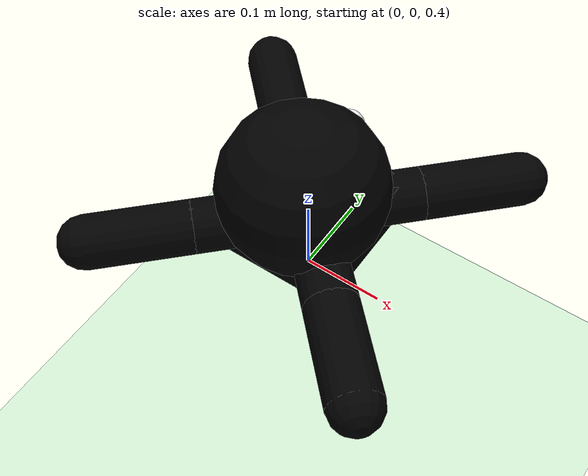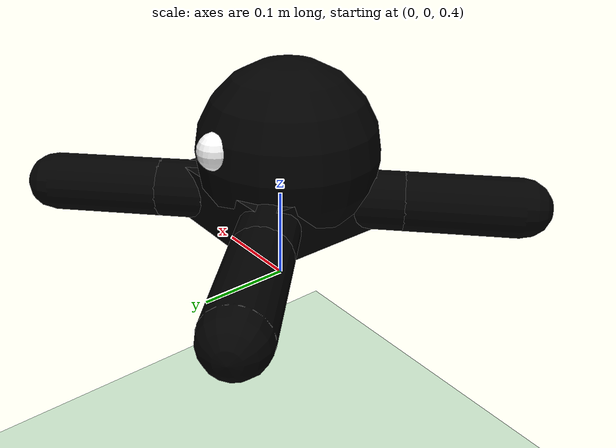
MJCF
<mujoco model="ant">
  <compiler angle="degree" coordinate="local" inertiafromgeom="true"/>
  <option integrator="RK4" timestep="0.01"/>
  <custom>
    <numeric data="0.0 0.0 0.55 1.0 0.0 0.0 0.0 0.0 1.0 0.0 -1.0 0.0 -1.0 0.0 1.0" name="init_qpos"/>
  </custom>
  <default>
    <joint armature="1" damping="1" limited="true"/>
    <geom conaffinity="0" condim="3" density="5.0" friction="1.5 0.1 0.1" margin="0.01" rgba="0.8 0.6 0.4 1"/>
  </default>
  <asset>
    <texture builtin="gradient" height="100" rgb1="1 1 1" rgb2="0 0 0" type="skybox" width="100"/>
    <texture builtin="flat" height="1278" mark="cross" markrgb="1 1 1" name="texgeom" random="0.01" rgb1="0.8 0.6 0.4" rgb2="0.8 0.6 0.4" type="cube" width="127"/>
    <texture name="texplane" type="2d" builtin="checker" rgb1="1 1 1" rgb2="1 1 1" width="100" height="100" />
    <material name="MatPlane" reflectance="0.5" shininess="1" specular="1" texrepeat="60 60" texture="texplane"/>
    <material name="geom" texture="texgeom" texuniform="true"/>
  </asset>
  <worldbody>
    <light cutoff="100" diffuse="1 1 1" dir="-0 0 -1.3" directional="true" exponent="1" pos="0 0 1.3" specular=".1 .1 .1"/>
    <geom conaffinity="1" condim="3" material="MatPlane" name="floor" pos="0 0 0" rgba="0.8 0.9 0.8 1" size="5 5 5" type="plane"/>
    <body name="torso" pos="0 0 0.5">
      <camera name="track" mode="trackcom" pos="0 -2 2" xyaxes="1 0 0 0 1 1"/>
      <camera euler="90 0 0" fovy="120" name="rgb" pos="0.0 0.08 0.07"/>
      <site name="camera_pos" rgba="1 1 1 1" pos="0.0 0.08 0.07" size="0.02"/>
      <geom name="torso_geom" pos="0 0 0" size="0.08 0.08 0.03" type="box" mass="1" rgba="0 0 0 1"/>
      <geom name="torso_geom2" pos="0.0 -0.01 0.05" size="0.1" type="sphere" mass="0.3" rgba="0 0 0 1"/>
      <joint armature="0" damping="0" limited="false" margin="0.01" name="root" pos="0 0 0" type="free"/>

      <body name="front_left_leg" pos="0 0 0">
        <geom fromto="0.0 0.0 0.0 0.057 0.057 0.0" name="aux_1_geom" size="0.032" type="capsule" rgba="0 0 0 1"/>
        <body name="aux_1" pos="0.057 0.057 0">
          <joint axis="0 0 1" name="hip_1" pos="0.0 0.0 0.0" range="-40 40" type="hinge"/>
          <geom fromto="0.0 0.0 0.0 0.037 0.037 0.0" name="left_leg_geom" size="0.032" type="capsule" mass="0.03" rgba="0 0 0 1"/>
          <body name="front_left_ankle" pos="0.037 0.037 0">
            <joint axis="-1 1 0" name="ankle_1" pos="0.0 0.0 0.0" range="30 100" type="hinge"/>
            <geom fromto="0.0 0.0 0.0 0.086 0.086 0.0" name="left_ankle_geom" size="0.032" type="capsule" mass="0.082" rgba="0 0 0 1"/>
          </body>
        </body>
      </body>
      <body name="front_right_leg" pos="0 0 0">
        <geom fromto="0.0 0.0 0.0 -0.057 0.057 0.0" name="aux_2_geom" size="0.032" type="capsule" rgba="0 0 0 1"/>
        <body name="aux_2" pos="-0.057 0.057 0">
          <joint axis="0 0 1" name="hip_2" pos="0.0 0.0 0.0" range="-40 40" type="hinge"/>
          <geom fromto="0.0 0.0 0.0 -0.037 0.037 0.0" name="right_leg_geom" size="0.032" type="capsule" mass="0.03" rgba="0 0 0 1"/>
          <body name="front_right_ankle" pos="-0.037 0.037 0">
            <joint axis="1 1 0" name="ankle_2" pos="0.0 0.0 0.0" range="-100 -30" type="hinge"/>
            <geom fromto="0.0 0.0 0.0 -0.086 0.086 0.0" name="right_ankle_geom" size="0.032" type="capsule" mass="0.082" rgba="0 0 0 1"/>
          </body>
        </body>
      </body>
      <body name="left_back_leg" pos="0 0 0">
        <geom fromto="0.0 0.0 0.0 -0.057 -0.057 0.0" name="aux_3_geom" size="0.032" type="capsule" rgba="0 0 0 1"/>
        <body name="aux_3" pos="-0.057 -0.057 0">
          <joint axis="0 0 1" name="hip_3" pos="0.0 0.0 0.0" range="-40 40" type="hinge"/>
          <geom fromto="0.0 0.0 0.0 -0.037 -0.037 0.0" name="back_leg_geom" size="0.032" type="capsule" mass="0.03" rgba="0 0 0 1"/>
          <body pos="-0.037 -0.037 0">
            <joint axis="-1 1 0" name="ankle_3" pos="0.0 0.0 0.0" range="-100 -30" type="hinge"/>
            <geom fromto="0.0 0.0 0.0 -0.086 -0.086 0.0" name="third_ankle_geom" size="0.032" type="capsule" mass="0.082" rgba="0 0 0 1"/>
          </body>
        </body>
      </body>
      <body name="right_back_leg" pos="0 0 0">
        <geom fromto="0.0 0.0 0.0 0.057 -0.057 0.0" name="aux_4_geom" size="0.032" type="capsule" rgba="0 0 0 1"/>
        <body name="aux_4" pos="0.057 -0.057 0">
          <joint axis="0 0 1" name="hip_4" pos="0.0 0.0 0.0" range="-40 40" type="hinge"/>
          <geom fromto="0.0 0.0 0.0 0.037 -0.037 0.0" name="rightback_leg_geom" size="0.032" type="capsule" mass="0.03" rgba="0 0 0 1"/>
          <body pos="0.037 -0.037 0">
            <joint axis="1 1 0" name="ankle_4" pos="0.0 0.0 0.0" range="30 100" type="hinge"/>
            <geom fromto="0.0 0.0 0.0 0.086 -0.086 0.0" name="fourth_ankle_geom" size="0.032" type="capsule" mass="0.082" rgba="0 0 0 1"/>
          </body>
        </body>
      </body>
    </body>
  </worldbody>
  <actuator>
    <motor ctrllimited="true" ctrlrange="-1.0 1.0" joint="hip_4" gear="13"/>
    <motor ctrllimited="true" ctrlrange="-1.0 1.0" joint="ankle_4" gear="13"/>
    <motor ctrllimited="true" ctrlrange="-1.0 1.0" joint="hip_1" gear="13"/>
    <motor ctrllimited="true" ctrlrange="-1.0 1.0" joint="ankle_1" gear="13"/>
    <motor ctrllimited="true" ctrlrange="-1.0 1.0" joint="hip_2" gear="13"/>
    <motor ctrllimited="true" ctrlrange="-1.0 1.0" joint="ankle_2" gear="13"/>
    <motor ctrllimited="true" ctrlrange="-1.0 1.0" joint="hip_3" gear="13"/>
    <motor ctrllimited="true" ctrlrange="-1.0 1.0" joint="ankle_3" gear="13"/>
  </actuator>
</mujoco>
